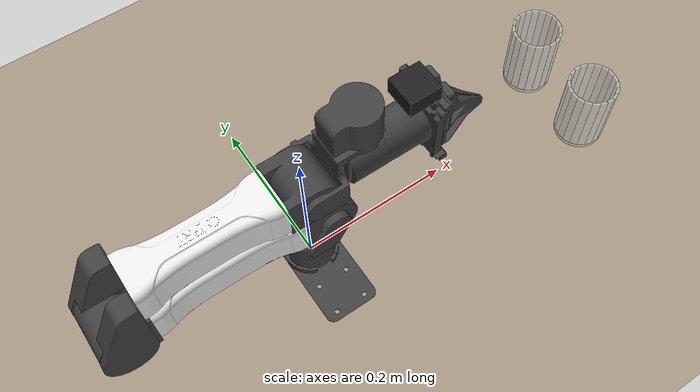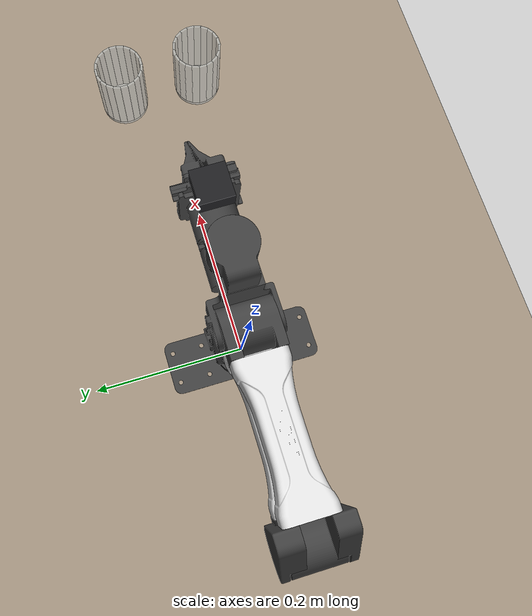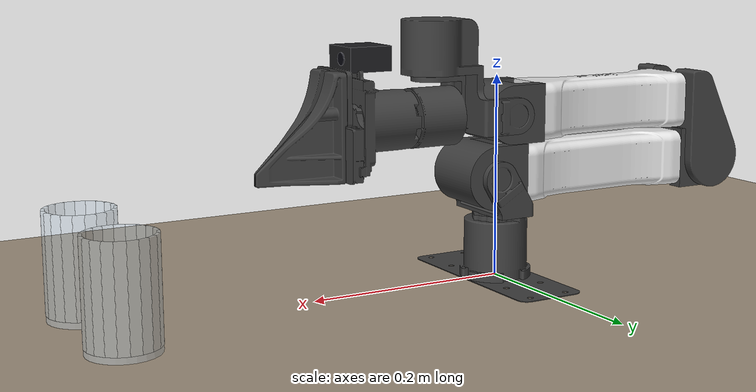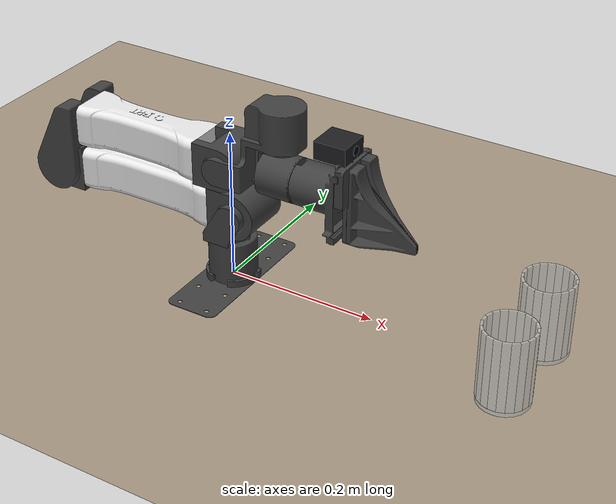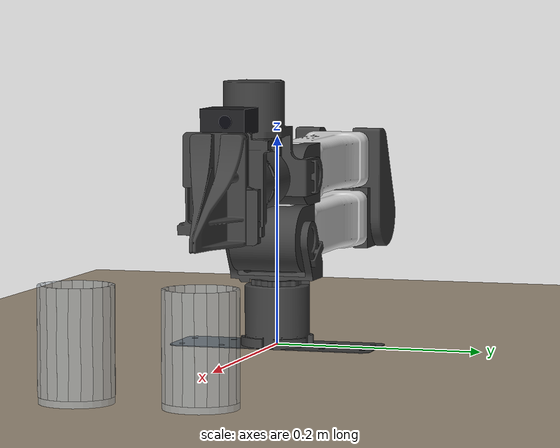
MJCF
<mujoco model="yam_glasses">
  <include file="yam_follower.xml"/>
  <include file="glasses.xml"/>

  <option timestep="0.0016666666666666668" cone="elliptic" impratio="10"/>

  <visual>
    <global offwidth="1280" offheight="960"/>
    <quality shadowsize="4096"/>
    <headlight ambient="0.40 0.40 0.40" diffuse="0.30 0.30 0.30" specular="0 0 0"/>
  </visual>

  <asset>
    <texture name="skybox" type="skybox" builtin="gradient"
             rgb1="0.36 0.43 0.52" rgb2="0.10 0.12 0.16" width="256" height="1536"/>
    <texture name="tabletop_tex" type="2d" builtin="checker"
             rgb1="0.66 0.60 0.52" rgb2="0.60 0.54 0.47" width="300" height="300"/>
    <material name="tabletop" texture="tabletop_tex" texrepeat="8 8" reflectance="0"
              specular="0.05" shininess="0.1"/>
  </asset>

  <worldbody>
    <!-- Soft and mostly diffuse: specular hotspots on the table are pixels a
         policy would learn to depend on. -->
    <light name="key"  pos="0.6 0.4 1.4"  dir="-0.4 -0.3 -1" diffuse="0.45 0.45 0.45"
           specular="0.05 0.05 0.05" castshadow="true"/>
    <light name="fill" pos="-0.3 -0.5 0.9" dir="0.3 0.5 -0.9" diffuse="0.25 0.25 0.25"
           specular="0 0 0" castshadow="false"/>

    <!-- The arm base is welded to the world at the origin, so it sits on the
         tabletop without colliding with it. -->
    <geom name="tabletop" type="plane" size="0.8 0.8 0.02" material="tabletop"
          friction="1.0 0.01 0.001"/>

    <camera name="top" pos="0.22 0 0.72" xyaxes="0.000000 -1.000000 0.000000 0.965755 0.000000 0.259457" fovy="55"/>
  </worldbody>
</mujoco>

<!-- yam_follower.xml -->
<!-- GENERATED by scripts/build_yam_assets.py from teleop_sim/envs/yam_assets.py.
     Do not edit by hand: change the generator and re-run it. -->
<mujoco model="yam_follower">
  <compiler angle="radian" meshdir="upstream/assets"/>

  <option integrator="implicitfast"/>

  <default>
    <default class="yam">
      <position inheritrange="1"/>
      <joint frictionloss="0.1" axis="0 0 1"/>
      <default class="dm4340">
        <joint armature="0.032"/>
        <position kp="40" kv="2.5" forcerange="-28 28"/>
      </default>
      <default class="dm4310">
        <joint armature="0.0018"/>
        <position kp="10" kv="1" forcerange="-10 10"/>
      </default>
      <default class="visual">
        <geom type="mesh" contype="0" conaffinity="0" density="0" group="2" material="black"/>
      </default>
      <default class="collision">
        <geom group="3" type="capsule"/>
        <default class="sphere_collision">
          <geom size="0.0006 0 0" type="sphere" rgba="1 0 0 1"/>
        </default>
      </default>
      <default class="finger">
        <joint type="slide" armature="0.1" frictionloss="0.1"/>
        <position ctrlrange="0.0 0.041" kp="100" kv="10" inheritrange="0"/>
      </default>
    </default>
  </default>

  <asset>
    <material name="black" rgba="0.25 0.25 0.25 1"/>
    <material name="white" rgba="0.9 0.9 0.9 1"/>

    <mesh file="model2.stl"/>
    <mesh file="model2__2.stl"/>
    <mesh file="model2__3.stl"/>
    <mesh file="model2__4.stl"/>
    <mesh file="model2__5.stl"/>
    <mesh file="model2__6.stl"/>
    <mesh file="model2__7.stl"/>
    <mesh file="model2__8.stl"/>
    <mesh file="model2__9.stl"/>
    <mesh file="model2__10.stl"/>
    <mesh file="model2__11.stl"/>
    <mesh file="model2__12.stl"/>
    <mesh file="model2__13.stl"/>
    <mesh file="model2__14.stl"/>
    <mesh file="model2__15.stl"/>
    <mesh file="model2__16.stl"/>
    <mesh file="model2__17.stl"/>
  </asset>

  <worldbody>
    <light name="spotlight" mode="targetbodycom" target="link_6" pos="0 0 1"/>
    <body name="arm" childclass="yam">
      <geom class="visual" pos="0 0 -0.0006" quat="1 0 0 1" mesh="model2"/>
      <geom class="collision" size="0.033 0.01" pos="0.0 0.0 0.026" quat="1 0 0 0"/>
      <body name="link_1" pos="0 0 0.0631" quat="1 0 0 1">
        <inertial pos="-0.00192861 -0.00795735 0.0208176" quat="0.297851 0.642634 0.360045 0.607185" mass="0.12415"
          diaginertia="0.000180751 0.000145532 5.89179e-05"/>
        <joint name="joint1" range="-2.61799 3.05433" class="dm4340"/>
        <geom class="visual" pos="5.26159e-07 2.34355e-07 -0.0632" quat="1 0 0 0" mesh="model2__2"/>
        <body name="link_2" pos="2.5e-05 -0.02 0.0409" quat="1 1 1 1" gravcomp="1">
          <inertial pos="0.132008 2.10599e-06 0.000293073" quat="1 1 1 1" mass="1.24434"
            diaginertia="0.0121902 0.0121318 0.000683304"/>
          <joint name="joint2" range="0 3.66519" class="dm4340"/>
          <geom class="visual" pos="0.0199992 -0.1041 -2.44738e-05" quat="1 -1 -1 -1" mesh="model2__3"/>
          <geom class="visual" pos="0.0199992 -0.1041 -2.44738e-05" quat="1 -1 -1 -1" mesh="model2__4"/>
          <geom class="visual" pos="0.0199992 -0.1041 -2.44738e-05" quat="1 -1 -1 -1" mesh="model2__5"
            material="white"/>
          <geom class="collision" size="0.032 0.11" pos="0.13 0 0" quat="1 0 1 0"/>
          <geom class="collision" size="0.033 0.02" pos="0 0.0 0" quat="1 0 0 0"/>
          <geom class="collision" size="0.033 0.025" pos="0.265 0 0" quat="1 0 0 0"/>
          <body name="link_3" pos="0.264 0 0" quat="0 1 0 0" gravcomp="1">
            <inertial pos="-0.121816 -0.054846 -0.000111108" quat="1 1 1 1" mass="0.853698"
              diaginertia="0.00699732 0.00696112 0.000788244"/>
            <joint name="joint3" range="0 3.66519" class="dm4340"/>
            <geom class="visual" pos="-0.244001 0.104101 2.44738e-05" quat="1 1 1 -1" mesh="model2__6"/>
            <geom class="visual" pos="-0.244001 0.104101 2.44738e-05" quat="1 1 1 -1" mesh="model2__7"/>
            <geom class="visual" pos="-0.244001 0.104101 2.44738e-05" quat="1 1 1 -1" mesh="model2__8"
              material="white"/>
            <geom class="visual" pos="-0.244001 0.104101 2.44738e-05" quat="1 1 1 -1" mesh="model2__9"/>
            <geom class="collision" size="0.034 0.12" pos="-0.14 -0.06 0.0" quat="1 0 1 0"/>
            <geom class="collision" size="0.034 0.015" pos="-0.24 -0.06 0.0" quat="1 0 0 0"/>
            <body name="link_4" pos="-0.245 -0.06 0" quat="1 0 0 0" gravcomp="1">
              <inertial pos="-0.0769778 -0.0527104 0.000154878" quat="0.667 0.667 -0.236 -0.236" mass="0.463511"
                diaginertia="0.000791532 0.000744733 0.000282116"/>
              <joint name="joint4" range="-1.5708 1.5708" class="dm4310"/>
              <geom class="visual" pos="0.00100023 0.164101 2.44738e-05" quat="1 1 1 -1" mesh="model2__10"/>
              <geom class="collision" size="0.03 0.015" pos="-0.073 -0.06 0.0" quat="1 1 0 0"/>
              <body name="link_5" pos="-0.074 -0.0395 2.5e-05" quat="1 -1 1 1" gravcomp="1">
                <inertial pos="3.64861e-05 0.00025665 0.0353526" quat="1 0 0 0" mass="0.350962"
                  diaginertia="0.000197802 0.0001775 0.000147402"/>
                <joint name="joint5" range="-1.5708 1.5708" class="dm4310"/>
                <geom class="visual" pos="0 -0.0749971 0.203601" quat="1.32679e-06 1 0 0" mesh="model2__11"/>
                <geom class="collision" size="0.030 0.015" pos="0 0.025 0.0395" quat="1 1 0 0"/>
                <body name="link_6" pos="0 0.0353 0.0395" quat="1 -1 0 0" gravcomp="1">
                  <inertial pos="-0.000217767 7.37059e-05 0.0270545" quat="1 1 0 0" mass="0.367476"
                    diaginertia="0.000265958 0.000242686 0.000227409"/>
                  <joint name="joint6" range="-2.0944 2.0944" class="dm4310"/>
                  <geom class="visual" pos="0 -0.164101 -0.110597" quat="1 -1 0 0" mesh="model2__12"/>
                  <geom class="visual" pos="0 -0.164101 -0.110597" quat="1 -1 0 0" mesh="model2__13"/>
                  <geom class="collision" size="0.01 0.035" pos="0 0.039 0.052" quat="1 0 1 0"/>
                  <geom class="collision" size="0.030 0.005" pos="0 0.0 0.03" quat="1 0 0 1"/>
                  <geom class="collision" size="0.01 0.035" pos="0 -0.039 0.052" quat="1 0 1 0"/>
                  <site name="tcp_site" pos="0 0 0" quat="1 0 0 -1" size="0.005" rgba="1 0 0 1" group="4"/>
                  <site name="grasp_site" pos="0 0 0.1347" quat="1 0 0 -1" size="0.005" rgba="0 1 0 1" group="4"/>
                  <!-- D405-style wrist camera on top of the gripper (added by the generator). -->
                  <body name="wrist_d405" pos="0 0.06 0.04" gravcomp="1">
                    <inertial pos="0 0 0" mass="0.06" diaginertia="1.5e-05 1e-05 1e-05"/>
                    <geom name="wrist_d405_visual" type="box" size="0.021 0.0115 0.021" contype="0" conaffinity="0" group="2" rgba="0.12 0.12 0.13 1"/>
                    <geom name="wrist_d405_lens" type="cylinder" size="0.006 0.001" pos="0.003 0 0.021" contype="0" conaffinity="0" group="2" rgba="0.02 0.02 0.05 1"/>
                    <geom name="wrist_d405_collision" type="box" size="0.021 0.0115 0.021" group="3" mass="0"/>
                    <camera name="wrist" pos="0.003 0 0.022" xyaxes="-0.999614 0.000000 -0.027767 -0.013481 0.874237 0.485313" fovy="58"/>
                  </body>
                  <body name="link_left_finger" pos="-0.037 0.0392 0.0605" quat="1 0 1 0" gravcomp="1">
                    <inertial pos="-0.0192995 -0.0365902 0.039774" quat="0.757351 0.568898 -0.3199 0.0" mass="0.118"
                      diaginertia="0.000159084 0.000154909 4.63655e-05"/>
                    <joint class="finger" name="left_finger" range="-0.00205 0.037524"/>
                    <geom class="visual" pos="0.171097 -0.203301 0.037" quat="1 -1 -1 -1" mesh="model2__14"/>
                    <geom class="visual" pos="0.171097 -0.203301 0.037" quat="1 -1 -1 -1" mesh="model2__15"/>
                    <body name="lf_rot" quat="1 -1 -1 1" pos="0.0 -0.0392 0.037" gravcomp="1">
                      <geom class="collision" size="0.01 0.03" pos="0.0 -0.02 0.012" quat="1 0 1 0"
                        rgba="0.381493 0.492734 0.780446 1"/>
                      <geom class="collision" size="0.01 0.02" pos="-0.02 -0.01 0.032" quat="1 0 2.5 0"
                        rgba="0.381493 0.492734 0.780446 1"/>
                      <body name="lf_down" quat="1 0 0 0" pos="-0.044 0.0 0.0" gravcomp="1">
                        <geom class="collision" size="0.01 0.01" pos="0.0 -0.020 0.012" quat="1 -0.1 0 0"
                          rgba="0.381493 0.492734 0.780446 1"/>
                        <geom class="collision" size="0.003 0.022" pos="0.005 -0.014 0.04" quat="1 -0.2 0 0"
                          rgba="0.381493 0.492734 0.780446 1"/>
                        <geom class="collision" size="0.003 0.022" pos="-0.005 -0.014 0.04" quat="1 -0.2 0 0"
                          rgba="0.381493 0.492734 0.780446 1"/>
                        <geom class="collision" type="box" size="0.006 0.002 0.04" pos="0 -0.0024 0.046" quat="1 0 0 0"
                          rgba="0.381493 0.492734 0.780446 1"/>
                        <geom class="collision" type="box" size="0.006 0.002 0.039" pos="0.027 -0.0024 0.053"
                          quat="1 0 2.5 0" rgba="0.381493 0.492734 0.780446 1"/>
                        <geom class="sphere_collision" pos="0.003 -0.0004 0.078"/>
                        <geom class="sphere_collision" pos="-0.003 -0.0004 0.078"/>
                        <geom class="sphere_collision" pos="0.003 -0.0004 0.07"/>
                        <geom class="sphere_collision" pos="-0.003 -0.0004 0.07"/>
                        <geom class="sphere_collision" pos="0.003 -0.0004 0.06"/>
                        <geom class="sphere_collision" pos="-0.003 -0.0004 0.06"/>
                      </body>
                    </body>
                  </body>
                  <body name="link_right_finger" pos="0.037 -0.0392 0.0605" quat="1 0 1 0" gravcomp="1">
                    <inertial pos="-0.0192995 0.0365902 -0.039774" quat="-0.757351 0.568898 -0.3199 0" mass="0.118"
                      diaginertia="0.000159084 0.000154909 4.63655e-05"/>
                    <joint class="finger" name="right_finger" range="-0.037524 0.00205"/>
                    <geom class="visual" pos="0.171097 -0.124901 -0.037" quat="1 -1 -1 -1" mesh="model2__16"/>
                    <geom class="visual" pos="0.171097 -0.124901 -0.037" quat="1 -1 -1 -1" mesh="model2__17"/>
                    <body name="rf_rot" quat="1 1 -1 -1" pos="0.0 0.0392 -0.037" gravcomp="1">
                      <geom class="collision" size="0.01 0.03" pos="0.0 -0.02 0.012" quat="1 0 1 0"
                        rgba="0.381493 0.492734 0.780446 1"/>
                      <geom class="collision" size="0.01 0.02" pos="0.02 -0.01 0.032" quat="1 0 -2.5 0"
                        rgba="0.381493 0.492734 0.780446 1"/>
                      <body name="rf_down" quat="1 0 0 0" pos="0.044 0.0 0.0" gravcomp="1">
                        <geom class="collision" size="0.01 0.01" pos="0.0 -0.020 0.012" quat="1 -0.1 0 0"
                          rgba="0.381493 0.492734 0.780446 1"/>
                        <geom class="collision" size="0.003 0.022" pos="0.005 -0.014 0.04" quat="1 -0.2 0 0"
                          rgba="0.381493 0.492734 0.780446 1"/>
                        <geom class="collision" size="0.003 0.022" pos="-0.005 -0.014 0.04" quat="1 -0.2 0 0"
                          rgba="0.381493 0.492734 0.780446 1"/>
                        <geom class="collision" type="box" size="0.006 0.002 0.04" pos="0 -0.0024 0.046" quat="1 0 0 0"
                          rgba="0.381493 0.492734 0.780446 1"/>
                        <geom class="collision" type="box" size="0.006 0.002 0.039" pos="-0.027 -0.0024 0.053"
                          quat="1 0 -2.5 0" rgba="0.381493 0.492734 0.780446 1"/>
                        <geom class="sphere_collision" pos="0.003 -0.0004 0.078"/>
                        <geom class="sphere_collision" pos="-0.003 -0.0004 0.078"/>
                        <geom class="sphere_collision" pos="0.003 -0.0004 0.07"/>
                        <geom class="sphere_collision" pos="-0.003 -0.0004 0.07"/>
                        <geom class="sphere_collision" pos="0.003 -0.0004 0.06"/>
                        <geom class="sphere_collision" pos="-0.003 -0.0004 0.06"/>
                      </body>
                    </body>
                  </body>
                </body>
              </body>
            </body>
          </body>
        </body>
      </body>
    </body>
  </worldbody>

  <equality>
    <joint joint1="left_finger" joint2="right_finger" polycoef="0 -1 0 0 0"/>
  </equality>

  <actuator>
    <position name="joint1" joint="joint1" class="dm4340"/>
    <position name="joint2" joint="joint2" class="dm4340"/>
    <position name="joint3" joint="joint3" class="dm4340"/>
    <position name="joint4" joint="joint4" class="dm4310" kp="20" kv=".5"/>
    <position name="joint5" joint="joint5" class="dm4310"/>
    <position name="joint6" joint="joint6" class="dm4310"/>
    <position class="finger" name="gripper" joint="left_finger"/>
  </actuator>

  <keyframe>
    <key name="home" qpos="0 1.047 1.047 0 0 0 0 0" ctrl="0 1.047 1.047 0 0 0 0"/>
  </keyframe>
</mujoco>

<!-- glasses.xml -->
<!-- GENERATED by scripts/build_yam_assets.py from teleop_sim/envs/yam_assets.py.
     Do not edit by hand: change the generator and re-run it. -->
<mujoco model="glasses">
  <worldbody>
    <body name="glass_left" pos="0.4 0.055 0">
      <freejoint name="glass_left_free"/>
      <geom name="glass_left_base" type="cylinder" size="0.0325 0.003" pos="0 0 0.003" density="2500" rgba="0.78 0.88 0.96 0.35" friction="1 0.01 0.001" solimp="0.95 0.99 0.001" solref="0.004 1"/>
      <geom name="glass_left_wall00" type="box" size="0.0015 0.005303 0.047" pos="0.031000 0.000000 0.053" quat="1.000000 0 0 0.000000" density="2500" rgba="0.78 0.88 0.96 0.35" friction="1 0.01 0.001" solimp="0.95 0.99 0.001" solref="0.004 1"/>
      <geom name="glass_left_wall01" type="box" size="0.0015 0.005303 0.047" pos="0.029483 0.009580 0.053" quat="0.987688 0 0 0.156434" density="2500" rgba="0.78 0.88 0.96 0.35" friction="1 0.01 0.001" solimp="0.95 0.99 0.001" solref="0.004 1"/>
      <geom name="glass_left_wall02" type="box" size="0.0015 0.005303 0.047" pos="0.025080 0.018221 0.053" quat="0.951057 0 0 0.309017" density="2500" rgba="0.78 0.88 0.96 0.35" friction="1 0.01 0.001" solimp="0.95 0.99 0.001" solref="0.004 1"/>
      <geom name="glass_left_wall03" type="box" size="0.0015 0.005303 0.047" pos="0.018221 0.025080 0.053" quat="0.891007 0 0 0.453990" density="2500" rgba="0.78 0.88 0.96 0.35" friction="1 0.01 0.001" solimp="0.95 0.99 0.001" solref="0.004 1"/>
      <geom name="glass_left_wall04" type="box" size="0.0015 0.005303 0.047" pos="0.009580 0.029483 0.053" quat="0.809017 0 0 0.587785" density="2500" rgba="0.78 0.88 0.96 0.35" friction="1 0.01 0.001" solimp="0.95 0.99 0.001" solref="0.004 1"/>
      <geom name="glass_left_wall05" type="box" size="0.0015 0.005303 0.047" pos="0.000000 0.031000 0.053" quat="0.707107 0 0 0.707107" density="2500" rgba="0.78 0.88 0.96 0.35" friction="1 0.01 0.001" solimp="0.95 0.99 0.001" solref="0.004 1"/>
      <geom name="glass_left_wall06" type="box" size="0.0015 0.005303 0.047" pos="-0.009580 0.029483 0.053" quat="0.587785 0 0 0.809017" density="2500" rgba="0.78 0.88 0.96 0.35" friction="1 0.01 0.001" solimp="0.95 0.99 0.001" solref="0.004 1"/>
      <geom name="glass_left_wall07" type="box" size="0.0015 0.005303 0.047" pos="-0.018221 0.025080 0.053" quat="0.453990 0 0 0.891007" density="2500" rgba="0.78 0.88 0.96 0.35" friction="1 0.01 0.001" solimp="0.95 0.99 0.001" solref="0.004 1"/>
      <geom name="glass_left_wall08" type="box" size="0.0015 0.005303 0.047" pos="-0.025080 0.018221 0.053" quat="0.309017 0 0 0.951057" density="2500" rgba="0.78 0.88 0.96 0.35" friction="1 0.01 0.001" solimp="0.95 0.99 0.001" solref="0.004 1"/>
      <geom name="glass_left_wall09" type="box" size="0.0015 0.005303 0.047" pos="-0.029483 0.009580 0.053" quat="0.156434 0 0 0.987688" density="2500" rgba="0.78 0.88 0.96 0.35" friction="1 0.01 0.001" solimp="0.95 0.99 0.001" solref="0.004 1"/>
      <geom name="glass_left_wall10" type="box" size="0.0015 0.005303 0.047" pos="-0.031000 0.000000 0.053" quat="0.000000 0 0 1.000000" density="2500" rgba="0.78 0.88 0.96 0.35" friction="1 0.01 0.001" solimp="0.95 0.99 0.001" solref="0.004 1"/>
      <geom name="glass_left_wall11" type="box" size="0.0015 0.005303 0.047" pos="-0.029483 -0.009580 0.053" quat="-0.156434 0 0 0.987688" density="2500" rgba="0.78 0.88 0.96 0.35" friction="1 0.01 0.001" solimp="0.95 0.99 0.001" solref="0.004 1"/>
      <geom name="glass_left_wall12" type="box" size="0.0015 0.005303 0.047" pos="-0.025080 -0.018221 0.053" quat="-0.309017 0 0 0.951057" density="2500" rgba="0.78 0.88 0.96 0.35" friction="1 0.01 0.001" solimp="0.95 0.99 0.001" solref="0.004 1"/>
      <geom name="glass_left_wall13" type="box" size="0.0015 0.005303 0.047" pos="-0.018221 -0.025080 0.053" quat="-0.453990 0 0 0.891007" density="2500" rgba="0.78 0.88 0.96 0.35" friction="1 0.01 0.001" solimp="0.95 0.99 0.001" solref="0.004 1"/>
      <geom name="glass_left_wall14" type="box" size="0.0015 0.005303 0.047" pos="-0.009580 -0.029483 0.053" quat="-0.587785 0 0 0.809017" density="2500" rgba="0.78 0.88 0.96 0.35" friction="1 0.01 0.001" solimp="0.95 0.99 0.001" solref="0.004 1"/>
      <geom name="glass_left_wall15" type="box" size="0.0015 0.005303 0.047" pos="-0.000000 -0.031000 0.053" quat="-0.707107 0 0 0.707107" density="2500" rgba="0.78 0.88 0.96 0.35" friction="1 0.01 0.001" solimp="0.95 0.99 0.001" solref="0.004 1"/>
      <geom name="glass_left_wall16" type="box" size="0.0015 0.005303 0.047" pos="0.009580 -0.029483 0.053" quat="-0.809017 0 0 0.587785" density="2500" rgba="0.78 0.88 0.96 0.35" friction="1 0.01 0.001" solimp="0.95 0.99 0.001" solref="0.004 1"/>
      <geom name="glass_left_wall17" type="box" size="0.0015 0.005303 0.047" pos="0.018221 -0.025080 0.053" quat="-0.891007 0 0 0.453990" density="2500" rgba="0.78 0.88 0.96 0.35" friction="1 0.01 0.001" solimp="0.95 0.99 0.001" solref="0.004 1"/>
      <geom name="glass_left_wall18" type="box" size="0.0015 0.005303 0.047" pos="0.025080 -0.018221 0.053" quat="-0.951057 0 0 0.309017" density="2500" rgba="0.78 0.88 0.96 0.35" friction="1 0.01 0.001" solimp="0.95 0.99 0.001" solref="0.004 1"/>
      <geom name="glass_left_wall19" type="box" size="0.0015 0.005303 0.047" pos="0.029483 -0.009580 0.053" quat="-0.987688 0 0 0.156434" density="2500" rgba="0.78 0.88 0.96 0.35" friction="1 0.01 0.001" solimp="0.95 0.99 0.001" solref="0.004 1"/>
    </body>
    <body name="glass_right" pos="0.4 -0.055 0">
      <freejoint name="glass_right_free"/>
      <geom name="glass_right_base" type="cylinder" size="0.0325 0.003" pos="0 0 0.003" density="2500" rgba="0.78 0.88 0.96 0.35" friction="1 0.01 0.001" solimp="0.95 0.99 0.001" solref="0.004 1"/>
      <geom name="glass_right_wall00" type="box" size="0.0015 0.005303 0.047" pos="0.031000 0.000000 0.053" quat="1.000000 0 0 0.000000" density="2500" rgba="0.78 0.88 0.96 0.35" friction="1 0.01 0.001" solimp="0.95 0.99 0.001" solref="0.004 1"/>
      <geom name="glass_right_wall01" type="box" size="0.0015 0.005303 0.047" pos="0.029483 0.009580 0.053" quat="0.987688 0 0 0.156434" density="2500" rgba="0.78 0.88 0.96 0.35" friction="1 0.01 0.001" solimp="0.95 0.99 0.001" solref="0.004 1"/>
      <geom name="glass_right_wall02" type="box" size="0.0015 0.005303 0.047" pos="0.025080 0.018221 0.053" quat="0.951057 0 0 0.309017" density="2500" rgba="0.78 0.88 0.96 0.35" friction="1 0.01 0.001" solimp="0.95 0.99 0.001" solref="0.004 1"/>
      <geom name="glass_right_wall03" type="box" size="0.0015 0.005303 0.047" pos="0.018221 0.025080 0.053" quat="0.891007 0 0 0.453990" density="2500" rgba="0.78 0.88 0.96 0.35" friction="1 0.01 0.001" solimp="0.95 0.99 0.001" solref="0.004 1"/>
      <geom name="glass_right_wall04" type="box" size="0.0015 0.005303 0.047" pos="0.009580 0.029483 0.053" quat="0.809017 0 0 0.587785" density="2500" rgba="0.78 0.88 0.96 0.35" friction="1 0.01 0.001" solimp="0.95 0.99 0.001" solref="0.004 1"/>
      <geom name="glass_right_wall05" type="box" size="0.0015 0.005303 0.047" pos="0.000000 0.031000 0.053" quat="0.707107 0 0 0.707107" density="2500" rgba="0.78 0.88 0.96 0.35" friction="1 0.01 0.001" solimp="0.95 0.99 0.001" solref="0.004 1"/>
      <geom name="glass_right_wall06" type="box" size="0.0015 0.005303 0.047" pos="-0.009580 0.029483 0.053" quat="0.587785 0 0 0.809017" density="2500" rgba="0.78 0.88 0.96 0.35" friction="1 0.01 0.001" solimp="0.95 0.99 0.001" solref="0.004 1"/>
      <geom name="glass_right_wall07" type="box" size="0.0015 0.005303 0.047" pos="-0.018221 0.025080 0.053" quat="0.453990 0 0 0.891007" density="2500" rgba="0.78 0.88 0.96 0.35" friction="1 0.01 0.001" solimp="0.95 0.99 0.001" solref="0.004 1"/>
      <geom name="glass_right_wall08" type="box" size="0.0015 0.005303 0.047" pos="-0.025080 0.018221 0.053" quat="0.309017 0 0 0.951057" density="2500" rgba="0.78 0.88 0.96 0.35" friction="1 0.01 0.001" solimp="0.95 0.99 0.001" solref="0.004 1"/>
      <geom name="glass_right_wall09" type="box" size="0.0015 0.005303 0.047" pos="-0.029483 0.009580 0.053" quat="0.156434 0 0 0.987688" density="2500" rgba="0.78 0.88 0.96 0.35" friction="1 0.01 0.001" solimp="0.95 0.99 0.001" solref="0.004 1"/>
      <geom name="glass_right_wall10" type="box" size="0.0015 0.005303 0.047" pos="-0.031000 0.000000 0.053" quat="0.000000 0 0 1.000000" density="2500" rgba="0.78 0.88 0.96 0.35" friction="1 0.01 0.001" solimp="0.95 0.99 0.001" solref="0.004 1"/>
      <geom name="glass_right_wall11" type="box" size="0.0015 0.005303 0.047" pos="-0.029483 -0.009580 0.053" quat="-0.156434 0 0 0.987688" density="2500" rgba="0.78 0.88 0.96 0.35" friction="1 0.01 0.001" solimp="0.95 0.99 0.001" solref="0.004 1"/>
      <geom name="glass_right_wall12" type="box" size="0.0015 0.005303 0.047" pos="-0.025080 -0.018221 0.053" quat="-0.309017 0 0 0.951057" density="2500" rgba="0.78 0.88 0.96 0.35" friction="1 0.01 0.001" solimp="0.95 0.99 0.001" solref="0.004 1"/>
      <geom name="glass_right_wall13" type="box" size="0.0015 0.005303 0.047" pos="-0.018221 -0.025080 0.053" quat="-0.453990 0 0 0.891007" density="2500" rgba="0.78 0.88 0.96 0.35" friction="1 0.01 0.001" solimp="0.95 0.99 0.001" solref="0.004 1"/>
      <geom name="glass_right_wall14" type="box" size="0.0015 0.005303 0.047" pos="-0.009580 -0.029483 0.053" quat="-0.587785 0 0 0.809017" density="2500" rgba="0.78 0.88 0.96 0.35" friction="1 0.01 0.001" solimp="0.95 0.99 0.001" solref="0.004 1"/>
      <geom name="glass_right_wall15" type="box" size="0.0015 0.005303 0.047" pos="-0.000000 -0.031000 0.053" quat="-0.707107 0 0 0.707107" density="2500" rgba="0.78 0.88 0.96 0.35" friction="1 0.01 0.001" solimp="0.95 0.99 0.001" solref="0.004 1"/>
      <geom name="glass_right_wall16" type="box" size="0.0015 0.005303 0.047" pos="0.009580 -0.029483 0.053" quat="-0.809017 0 0 0.587785" density="2500" rgba="0.78 0.88 0.96 0.35" friction="1 0.01 0.001" solimp="0.95 0.99 0.001" solref="0.004 1"/>
      <geom name="glass_right_wall17" type="box" size="0.0015 0.005303 0.047" pos="0.018221 -0.025080 0.053" quat="-0.891007 0 0 0.453990" density="2500" rgba="0.78 0.88 0.96 0.35" friction="1 0.01 0.001" solimp="0.95 0.99 0.001" solref="0.004 1"/>
      <geom name="glass_right_wall18" type="box" size="0.0015 0.005303 0.047" pos="0.025080 -0.018221 0.053" quat="-0.951057 0 0 0.309017" density="2500" rgba="0.78 0.88 0.96 0.35" friction="1 0.01 0.001" solimp="0.95 0.99 0.001" solref="0.004 1"/>
      <geom name="glass_right_wall19" type="box" size="0.0015 0.005303 0.047" pos="0.029483 -0.009580 0.053" quat="-0.987688 0 0 0.156434" density="2500" rgba="0.78 0.88 0.96 0.35" friction="1 0.01 0.001" solimp="0.95 0.99 0.001" solref="0.004 1"/>
    </body>
  </worldbody>
</mujoco>
